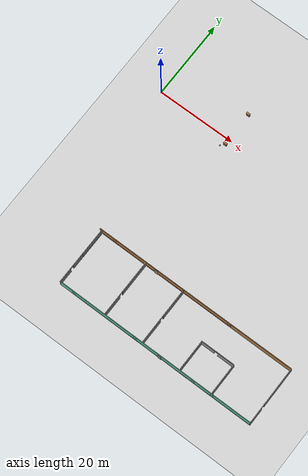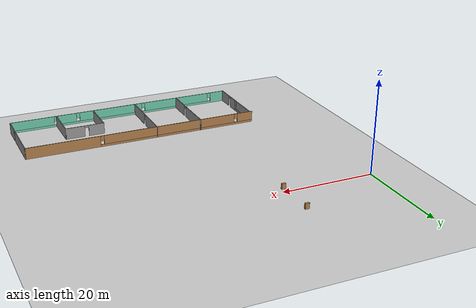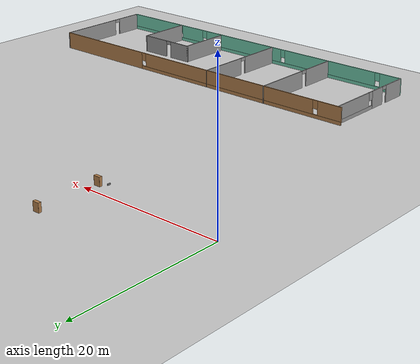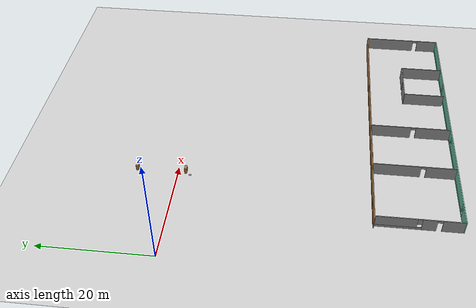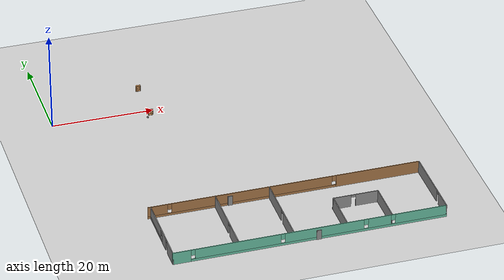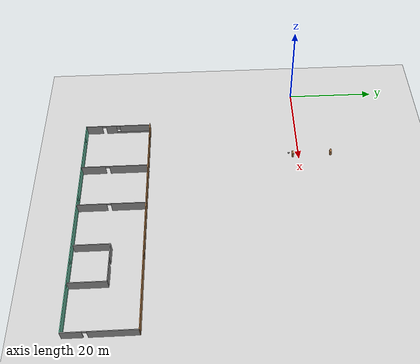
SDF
<sdf version="1.7">
 <world name="default">
  <model name="ground_plane">
   <static>1</static>
   <link name="link">
    <collision name="collision">
     <geometry><plane><normal>0 0 1</normal><size>100 100</size></plane></geometry>
     <surface>
      <contact><collide_bitmask>65535</collide_bitmask></contact>
      <friction><ode><mu>100</mu><mu2>50</mu2></ode></friction>
     </surface>
    </collision>
    <visual name="visual">
     <cast_shadows>0</cast_shadows>
     <geometry><plane><normal>0 0 1</normal><size>100 100</size></plane></geometry>
     <material>
      <script><uri>file://media/materials/scripts/gazebo.material</uri><name>Gazebo/Grey</name></script>
     </material>
    </visual>
   </link>
  </model>
  <model name="mynewbuilding">
   <pose>35.6759 -41.9538 0 0 -0 0</pose>
   <link name="Door_0">
    <collision name="Door_0_Collision">
     <geometry><box><size>0.9 0.17 2</size></box></geometry>
     <pose>0 0 1 0 -0 0</pose>
    </collision>
    <visual name="Door_0_Visual">
     <pose>0 0 1 0 -0 0</pose>
     <geometry><box><size>0.9 0.17 2</size></box></geometry>
     <material>
      <script><uri>file://media/materials/scripts/gazebo.material</uri><name>Gazebo/Grey</name></script>
     </material>
    </visual>
    <pose>-10.5562 7.30056 0 0 -0 0</pose>
   </link>
   <link name="Door_2">
    <collision name="Door_2_Collision">
     <geometry><box><size>0.9 0.17 2</size></box></geometry>
     <pose>0 0 1 0 -0 0</pose>
    </collision>
    <visual name="Door_2_Visual">
     <pose>0 0 1 0 -0 0</pose>
     <geometry><box><size>0.9 0.17 2</size></box></geometry>
     <material>
      <script><uri>file://media/materials/scripts/gazebo.material</uri><name>Gazebo/Grey</name></script>
     </material>
    </visual>
    <pose>1.7212 -7.54488 0 0 -0 0</pose>
   </link>
   <link name="Wall_0">
    <pose>0.25 -7.44583 0 0 -0 0</pose>
    <visual name="Wall_0_Visual_0">
     <pose>-24.2845 0 1.25 0 -0 0</pose>
     <geometry><box><size>3.43107 0.15 2.5</size></box></geometry>
     <material>
      <script><uri>file://media/materials/scripts/gazebo.material</uri><name>Gazebo/Grey</name></script>
      <ambient>0.435294 0.796078 0.67451 1</ambient>
     </material>
     <meta><layer>0</layer></meta>
    </visual>
    <collision name="Wall_0_Collision_0">
     <geometry><box><size>3.43107 0.15 2.5</size></box></geometry>
     <pose>-24.2845 0 1.25 0 -0 0</pose>
    </collision>
    <visual name="Wall_0_Visual_1">
     <pose>1.71554 0 0.25 0 -0 0</pose>
     <geometry><box><size>48.5689 0.15 0.5</size></box></geometry>
     <material>
      <script><uri>file://media/materials/scripts/gazebo.material</uri><name>Gazebo/Grey</name></script>
      <ambient>0.435294 0.796078 0.67451 1</ambient>
     </material>
     <meta><layer>0</layer></meta>
    </visual>
    <collision name="Wall_0_Collision_1">
     <geometry><box><size>48.5689 0.15 0.5</size></box></geometry>
     <pose>1.71554 0 0.25 0 -0 0</pose>
    </collision>
    <visual name="Wall_0_Visual_2">
     <pose>-13.7436 0 1.5 0 -0 0</pose>
     <geometry><box><size>16.0506 0.15 2</size></box></geometry>
     <material>
      <script><uri>file://media/materials/scripts/gazebo.material</uri><name>Gazebo/Grey</name></script>
      <ambient>0.435294 0.796078 0.67451 1</ambient>
     </material>
     <meta><layer>0</layer></meta>
    </visual>
    <collision name="Wall_0_Collision_2">
     <geometry><box><size>16.0506 0.15 2</size></box></geometry>
     <pose>-13.7436 0 1.5 0 -0 0</pose>
    </collision>
    <visual name="Wall_0_Visual_3">
     <pose>2.57933 0 1.5 0 -0 0</pose>
     <geometry><box><size>14.9953 0.15 2</size></box></geometry>
     <material>
      <script><uri>file://media/materials/scripts/gazebo.material</uri><name>Gazebo/Grey</name></script>
      <ambient>0.435294 0.796078 0.67451 1</ambient>
     </material>
     <meta><layer>0</layer></meta>
    </visual>
    <collision name="Wall_0_Collision_3">
     <geometry><box><size>14.9953 0.15 2</size></box></geometry>
     <pose>2.57933 0 1.5 0 -0 0</pose>
    </collision>
    <visual name="Wall_0_Visual_4">
     <pose>13.0626 0 1.5 0 -0 0</pose>
     <geometry><box><size>4.37128 0.15 2</size></box></geometry>
     <material>
      <script><uri>file://media/materials/scripts/gazebo.material</uri><name>Gazebo/Grey</name></script>
      <ambient>0.435294 0.796078 0.67451 1</ambient>
     </material>
     <meta><layer>0</layer></meta>
    </visual>
    <collision name="Wall_0_Collision_4">
     <geometry><box><size>4.37128 0.15 2</size></box></geometry>
     <pose>13.0626 0 1.5 0 -0 0</pose>
    </collision>
    <visual name="Wall_0_Visual_5">
     <pose>21.0241 0 1.5 0 -0 0</pose>
     <geometry><box><size>9.95176 0.15 2</size></box></geometry>
     <material>
      <script><uri>file://media/materials/scripts/gazebo.material</uri><name>Gazebo/Grey</name></script>
      <ambient>0.435294 0.796078 0.67451 1</ambient>
     </material>
     <meta><layer>0</layer></meta>
    </visual>
    <collision name="Wall_0_Collision_5">
     <geometry><box><size>9.95176 0.15 2</size></box></geometry>
     <pose>21.0241 0 1.5 0 -0 0</pose>
    </collision>
    <visual name="Wall_0_Visual_6">
     <pose>-22.1689 0 1.9 0 -0 0</pose>
     <geometry><box><size>0.8 0.15 1.2</size></box></geometry>
     <material>
      <script><uri>file://media/materials/scripts/gazebo.material</uri><name>Gazebo/Grey</name></script>
      <ambient>0.435294 0.796078 0.67451 1</ambient>
     </material>
     <meta><layer>0</layer></meta>
    </visual>
    <collision name="Wall_0_Collision_6">
     <geometry><box><size>0.8 0.15 1.2</size></box></geometry>
     <pose>-22.1689 0 1.9 0 -0 0</pose>
    </collision>
    <visual name="Wall_0_Visual_7">
     <pose>-5.3183 0 1.9 0 -0 0</pose>
     <geometry><box><size>0.8 0.15 1.2</size></box></geometry>
     <material>
      <script><uri>file://media/materials/scripts/gazebo.material</uri><name>Gazebo/Grey</name></script>
      <ambient>0.435294 0.796078 0.67451 1</ambient>
     </material>
     <meta><layer>0</layer></meta>
    </visual>
    <collision name="Wall_0_Collision_7">
     <geometry><box><size>0.8 0.15 1.2</size></box></geometry>
     <pose>-5.3183 0 1.9 0 -0 0</pose>
    </collision>
    <visual name="Wall_0_Visual_8">
     <pose>10.477 0 1.9 0 -0 0</pose>
     <geometry><box><size>0.8 0.15 1.2</size></box></geometry>
     <material>
      <script><uri>file://media/materials/scripts/gazebo.material</uri><name>Gazebo/Grey</name></script>
      <ambient>0.435294 0.796078 0.67451 1</ambient>
     </material>
     <meta><layer>0</layer></meta>
    </visual>
    <collision name="Wall_0_Collision_8">
     <geometry><box><size>0.8 0.15 1.2</size></box></geometry>
     <pose>10.477 0 1.9 0 -0 0</pose>
    </collision>
    <visual name="Wall_0_Visual_9">
     <pose>15.6482 0 1.9 0 -0 0</pose>
     <geometry><box><size>0.8 0.15 1.2</size></box></geometry>
     <material>
      <script><uri>file://media/materials/scripts/gazebo.material</uri><name>Gazebo/Grey</name></script>
      <ambient>0.435294 0.796078 0.67451 1</ambient>
     </material>
     <meta><layer>0</layer></meta>
    </visual>
    <collision name="Wall_0_Collision_9">
     <geometry><box><size>0.8 0.15 1.2</size></box></geometry>
     <pose>15.6482 0 1.9 0 -0 0</pose>
    </collision>
   </link>
   <link name="Wall_11">
    <pose>-25.675 -0.145833 0 0 -0 1.5708</pose>
    <visual name="Wall_11_Visual_0">
     <pose>-5.5013 0 1.25 0 -0 0</pose>
     <geometry><box><size>3.7474 0.15 2.5</size></box></geometry>
     <material>
      <script><uri>file://media/materials/scripts/gazebo.material</uri><name>Gazebo/Grey</name></script>
      <ambient>1 1 1 1</ambient>
     </material>
     <meta><layer>0</layer></meta>
    </visual>
    <collision name="Wall_11_Collision_0">
     <geometry><box><size>3.7474 0.15 2.5</size></box></geometry>
     <pose>-5.5013 0 1.25 0 -0 0</pose>
    </collision>
    <visual name="Wall_11_Visual_1">
     <pose>-1.51679 0 1.25 0 -0 0</pose>
     <geometry><box><size>2.42163 0.15 2.5</size></box></geometry>
     <material>
      <script><uri>file://media/materials/scripts/gazebo.material</uri><name>Gazebo/Grey</name></script>
      <ambient>1 1 1 1</ambient>
     </material>
     <meta><layer>0</layer></meta>
    </visual>
    <collision name="Wall_11_Collision_1">
     <geometry><box><size>2.42163 0.15 2.5</size></box></geometry>
     <pose>-1.51679 0 1.25 0 -0 0</pose>
    </collision>
    <visual name="Wall_11_Visual_2">
     <pose>3.53451 0 0.25 0 -0 0</pose>
     <geometry><box><size>7.68097 0.15 0.5</size></box></geometry>
     <material>
      <script><uri>file://media/materials/scripts/gazebo.material</uri><name>Gazebo/Grey</name></script>
      <ambient>1 1 1 1</ambient>
     </material>
     <meta><layer>0</layer></meta>
    </visual>
    <collision name="Wall_11_Collision_2">
     <geometry><box><size>7.68097 0.15 0.5</size></box></geometry>
     <pose>3.53451 0 0.25 0 -0 0</pose>
    </collision>
    <visual name="Wall_11_Visual_3">
     <pose>3.93451 0 1.5 0 -0 0</pose>
     <geometry><box><size>6.88097 0.15 2</size></box></geometry>
     <material>
      <script><uri>file://media/materials/scripts/gazebo.material</uri><name>Gazebo/Grey</name></script>
      <ambient>1 1 1 1</ambient>
     </material>
     <meta><layer>0</layer></meta>
    </visual>
    <collision name="Wall_11_Collision_3">
     <geometry><box><size>6.88097 0.15 2</size></box></geometry>
     <pose>3.93451 0 1.5 0 -0 0</pose>
    </collision>
    <visual name="Wall_11_Visual_4">
     <pose>0.094027 0 1.9 0 -0 0</pose>
     <geometry><box><size>0.8 0.15 1.2</size></box></geometry>
     <material>
      <script><uri>file://media/materials/scripts/gazebo.material</uri><name>Gazebo/Grey</name></script>
      <ambient>1 1 1 1</ambient>
     </material>
     <meta><layer>0</layer></meta>
    </visual>
    <collision name="Wall_11_Collision_4">
     <geometry><box><size>0.8 0.15 1.2</size></box></geometry>
     <pose>0.094027 0 1.9 0 -0 0</pose>
    </collision>
    <visual name="Wall_11_Visual_5">
     <pose>-3.1776 0 2.25 0 -0 0</pose>
     <geometry><box><size>0.9 0.15 0.5</size></box></geometry>
     <material>
      <script><uri>file://media/materials/scripts/gazebo.material</uri><name>Gazebo/Grey</name></script>
      <ambient>1 1 1 1</ambient>
     </material>
     <meta><layer>0</layer></meta>
    </visual>
    <collision name="Wall_11_Collision_5">
     <geometry><box><size>0.9 0.15 0.5</size></box></geometry>
     <pose>-3.1776 0 2.25 0 -0 0</pose>
    </collision>
   </link>
   <link name="Wall_14">
    <pose>-13.4057 0.020833 0 0 -0 1.5708</pose>
    <visual name="Wall_14_Visual_0">
     <pose>-4.78525 0 1.25 0 -0 0</pose>
     <geometry><box><size>5.4295 0.15 2.5</size></box></geometry>
     <material>
      <script><uri>file://media/materials/scripts/gazebo.material</uri><name>Gazebo/Grey</name></script>
      <ambient>1 1 1 1</ambient>
     </material>
     <meta><layer>0</layer></meta>
    </visual>
    <collision name="Wall_14_Collision_0">
     <geometry><box><size>5.4295 0.15 2.5</size></box></geometry>
     <pose>-4.78525 0 1.25 0 -0 0</pose>
    </collision>
    <visual name="Wall_14_Visual_1">
     <pose>3.16475 0 1.25 0 -0 0</pose>
     <geometry><box><size>8.6705 0.15 2.5</size></box></geometry>
     <material>
      <script><uri>file://media/materials/scripts/gazebo.material</uri><name>Gazebo/Grey</name></script>
      <ambient>1 1 1 1</ambient>
     </material>
     <meta><layer>0</layer></meta>
    </visual>
    <collision name="Wall_14_Collision_1">
     <geometry><box><size>8.6705 0.15 2.5</size></box></geometry>
     <pose>3.16475 0 1.25 0 -0 0</pose>
    </collision>
    <visual name="Wall_14_Visual_2">
     <pose>-1.6205 0 2.25 0 -0 0</pose>
     <geometry><box><size>0.9 0.15 0.5</size></box></geometry>
     <material>
      <script><uri>file://media/materials/scripts/gazebo.material</uri><name>Gazebo/Grey</name></script>
      <ambient>1 1 1 1</ambient>
     </material>
     <meta><layer>0</layer></meta>
    </visual>
    <collision name="Wall_14_Collision_2">
     <geometry><box><size>0.9 0.15 0.5</size></box></geometry>
     <pose>-1.6205 0 2.25 0 -0 0</pose>
    </collision>
   </link>
   <link name="Wall_16">
    <pose>-3.02793 -0.014346 0 0 -0 1.5708</pose>
    <visual name="Wall_16_Visual_0">
     <pose>-4.22239 0 1.25 0 -0 0</pose>
     <geometry><box><size>6.55522 0.15 2.5</size></box></geometry>
     <material>
      <script><uri>file://media/materials/scripts/gazebo.material</uri><name>Gazebo/Grey</name></script>
      <ambient>1 1 1 1</ambient>
     </material>
     <meta><layer>0</layer></meta>
    </visual>
    <collision name="Wall_16_Collision_0">
     <geometry><box><size>6.55522 0.15 2.5</size></box></geometry>
     <pose>-4.22239 0 1.25 0 -0 0</pose>
    </collision>
    <visual name="Wall_16_Visual_1">
     <pose>3.72761 0 1.25 0 -0 0</pose>
     <geometry><box><size>7.54478 0.15 2.5</size></box></geometry>
     <material>
      <script><uri>file://media/materials/scripts/gazebo.material</uri><name>Gazebo/Grey</name></script>
      <ambient>1 1 1 1</ambient>
     </material>
     <meta><layer>0</layer></meta>
    </visual>
    <collision name="Wall_16_Collision_1">
     <geometry><box><size>7.54478 0.15 2.5</size></box></geometry>
     <pose>3.72761 0 1.25 0 -0 0</pose>
    </collision>
    <visual name="Wall_16_Visual_2">
     <pose>-0.494784 0 2.25 0 -0 0</pose>
     <geometry><box><size>0.9 0.15 0.5</size></box></geometry>
     <material>
      <script><uri>file://media/materials/scripts/gazebo.material</uri><name>Gazebo/Grey</name></script>
      <ambient>1 1 1 1</ambient>
     </material>
     <meta><layer>0</layer></meta>
    </visual>
    <collision name="Wall_16_Collision_2">
     <geometry><box><size>0.9 0.15 0.5</size></box></geometry>
     <pose>-0.494784 0 2.25 0 -0 0</pose>
    </collision>
   </link>
   <link name="Wall_18">
    <collision name="Wall_18_Collision">
     <geometry><box><size>7.75 0.15 2.5</size></box></geometry>
     <pose>0 0 1.25 0 -0 0</pose>
    </collision>
    <visual name="Wall_18_Visual">
     <pose>0 0 1.25 0 -0 0</pose>
     <geometry><box><size>7.75 0.15 2.5</size></box></geometry>
     <material>
      <script><uri>file://media/materials/scripts/gazebo.material</uri><name>Gazebo/Grey</name></script>
      <ambient>1 1 1 1</ambient>
     </material>
     <meta><layer>0</layer></meta>
    </visual>
    <pose>7.10355 -3.2172 0 0 -0 1.5708</pose>
   </link>
   <link name="Wall_19">
    <pose>11.4035 0.5828 0 0 -0 0</pose>
    <visual name="Wall_19_Visual_0">
     <pose>-2.64702 0 1.25 0 -0 0</pose>
     <geometry><box><size>3.52632 0.15 2.5</size></box></geometry>
     <material>
      <script><uri>file://media/materials/scripts/gazebo.material</uri><name>Gazebo/Grey</name></script>
      <ambient>1 1 1 1</ambient>
     </material>
     <meta><layer>0</layer></meta>
    </visual>
    <collision name="Wall_19_Collision_0">
     <geometry><box><size>3.52632 0.15 2.5</size></box></geometry>
     <pose>-2.64702 0 1.25 0 -0 0</pose>
    </collision>
    <visual name="Wall_19_Visual_1">
     <pose>2.21316 0 1.25 0 -0 0</pose>
     <geometry><box><size>4.39404 0.15 2.5</size></box></geometry>
     <material>
      <script><uri>file://media/materials/scripts/gazebo.material</uri><name>Gazebo/Grey</name></script>
      <ambient>1 1 1 1</ambient>
     </material>
     <meta><layer>0</layer></meta>
    </visual>
    <collision name="Wall_19_Collision_1">
     <geometry><box><size>4.39404 0.15 2.5</size></box></geometry>
     <pose>2.21316 0 1.25 0 -0 0</pose>
    </collision>
    <visual name="Wall_19_Visual_2">
     <pose>-0.433857 0 2.25 0 -0 0</pose>
     <geometry><box><size>0.9 0.15 0.5</size></box></geometry>
     <material>
      <script><uri>file://media/materials/scripts/gazebo.material</uri><name>Gazebo/Grey</name></script>
      <ambient>1 1 1 1</ambient>
     </material>
     <meta><layer>0</layer></meta>
    </visual>
    <collision name="Wall_19_Collision_2">
     <geometry><box><size>0.9 0.15 0.5</size></box></geometry>
     <pose>-0.433857 0 2.25 0 -0 0</pose>
    </collision>
   </link>
   <link name="Wall_20">
    <collision name="Wall_20_Collision">
     <geometry><box><size>8 0.15 2.5</size></box></geometry>
     <pose>0 0 1.25 0 -0 0</pose>
    </collision>
    <visual name="Wall_20_Visual">
     <pose>0 0 1.25 0 -0 0</pose>
     <geometry><box><size>8 0.15 2.5</size></box></geometry>
     <material>
      <script><uri>file://media/materials/scripts/gazebo.material</uri><name>Gazebo/Grey</name></script>
      <ambient>1 1 1 1</ambient>
     </material>
     <meta><layer>0</layer></meta>
    </visual>
    <pose>15.7387 -3.3422 0 0 -0 -1.5708</pose>
   </link>
   <link name="Wall_8">
    <pose>26.175 -0.020833 0 0 -0 1.5708</pose>
    <visual name="Wall_8_Visual_0">
     <pose>-5.41523 0 1.25 0 -0 0</pose>
     <geometry><box><size>4.16955 0.15 2.5</size></box></geometry>
     <material>
      <script><uri>file://media/materials/scripts/gazebo.material</uri><name>Gazebo/Grey</name></script>
      <ambient>1 1 1 1</ambient>
     </material>
     <meta><layer>0</layer></meta>
    </visual>
    <collision name="Wall_8_Collision_0">
     <geometry><box><size>4.16955 0.15 2.5</size></box></geometry>
     <pose>-5.41523 0 1.25 0 -0 0</pose>
    </collision>
    <visual name="Wall_8_Visual_1">
     <pose>2.53477 0 1.25 0 -0 0</pose>
     <geometry><box><size>9.93045 0.15 2.5</size></box></geometry>
     <material>
      <script><uri>file://media/materials/scripts/gazebo.material</uri><name>Gazebo/Grey</name></script>
      <ambient>1 1 1 1</ambient>
     </material>
     <meta><layer>0</layer></meta>
    </visual>
    <collision name="Wall_8_Collision_1">
     <geometry><box><size>9.93045 0.15 2.5</size></box></geometry>
     <pose>2.53477 0 1.25 0 -0 0</pose>
    </collision>
    <visual name="Wall_8_Visual_2">
     <pose>-2.88045 0 2.25 0 -0 0</pose>
     <geometry><box><size>0.9 0.15 0.5</size></box></geometry>
     <material>
      <script><uri>file://media/materials/scripts/gazebo.material</uri><name>Gazebo/Grey</name></script>
      <ambient>1 1 1 1</ambient>
     </material>
     <meta><layer>0</layer></meta>
    </visual>
    <collision name="Wall_8_Collision_2">
     <geometry><box><size>0.9 0.15 0.5</size></box></geometry>
     <pose>-2.88045 0 2.25 0 -0 0</pose>
    </collision>
   </link>
   <link name="Wall_9">
    <pose>-0 7.40417 0 0 -0 3.14159</pose>
    <visual name="Wall_9_Visual_0">
     <pose>-18.0729 0 1.25 0 -0 0</pose>
     <geometry><box><size>16.3543 0.15 2.5</size></box></geometry>
     <material>
      <script><uri>file://media/materials/scripts/gazebo.material</uri><name>Gazebo/Wood</name></script>
      <ambient>1 1 1 1</ambient>
     </material>
     <meta><layer>0</layer></meta>
    </visual>
    <collision name="Wall_9_Collision_0">
     <geometry><box><size>16.3543 0.15 2.5</size></box></geometry>
     <pose>-18.0729 0 1.25 0 -0 0</pose>
    </collision>
    <visual name="Wall_9_Visual_1">
     <pose>8.17715 0 0.25 0 -0 0</pose>
     <geometry><box><size>36.1457 0.15 0.5</size></box></geometry>
     <material>
      <script><uri>file://media/materials/scripts/gazebo.material</uri><name>Gazebo/Wood</name></script>
      <ambient>1 1 1 1</ambient>
     </material>
     <meta><layer>0</layer></meta>
    </visual>
    <collision name="Wall_9_Collision_1">
     <geometry><box><size>36.1457 0.15 0.5</size></box></geometry>
     <pose>8.17715 0 0.25 0 -0 0</pose>
    </collision>
    <visual name="Wall_9_Visual_2">
     <pose>6.29956 0 1.5 0 -0 0</pose>
     <geometry><box><size>30.7905 0.15 2</size></box></geometry>
     <material>
      <script><uri>file://media/materials/scripts/gazebo.material</uri><name>Gazebo/Wood</name></script>
      <ambient>1 1 1 1</ambient>
     </material>
     <meta><layer>0</layer></meta>
    </visual>
    <collision name="Wall_9_Collision_2">
     <geometry><box><size>30.7905 0.15 2</size></box></geometry>
     <pose>6.29956 0 1.5 0 -0 0</pose>
    </collision>
    <visual name="Wall_9_Visual_3">
     <pose>24.3724 0 1.5 0 -0 0</pose>
     <geometry><box><size>3.75518 0.15 2</size></box></geometry>
     <material>
      <script><uri>file://media/materials/scripts/gazebo.material</uri><name>Gazebo/Wood</name></script>
      <ambient>1 1 1 1</ambient>
     </material>
     <meta><layer>0</layer></meta>
    </visual>
    <collision name="Wall_9_Collision_3">
     <geometry><box><size>3.75518 0.15 2</size></box></geometry>
     <pose>24.3724 0 1.5 0 -0 0</pose>
    </collision>
    <visual name="Wall_9_Visual_4">
     <pose>-9.4957 0 1.9 0 -0 0</pose>
     <geometry><box><size>0.8 0.15 1.2</size></box></geometry>
     <material>
      <script><uri>file://media/materials/scripts/gazebo.material</uri><name>Gazebo/Wood</name></script>
      <ambient>1 1 1 1</ambient>
     </material>
     <meta><layer>0</layer></meta>
    </visual>
    <collision name="Wall_9_Collision_4">
     <geometry><box><size>0.8 0.15 1.2</size></box></geometry>
     <pose>-9.4957 0 1.9 0 -0 0</pose>
    </collision>
    <visual name="Wall_9_Visual_5">
     <pose>22.0948 0 1.9 0 -0 0</pose>
     <geometry><box><size>0.8 0.15 1.2</size></box></geometry>
     <material>
      <script><uri>file://media/materials/scripts/gazebo.material</uri><name>Gazebo/Wood</name></script>
      <ambient>1 1 1 1</ambient>
     </material>
     <meta><layer>0</layer></meta>
    </visual>
    <collision name="Wall_9_Collision_5">
     <geometry><box><size>0.8 0.15 1.2</size></box></geometry>
     <pose>22.0948 0 1.9 0 -0 0</pose>
    </collision>
   </link>
   <static>1</static>
  </model>
  <model name="myrooomba2">
   <link name="link_1">
    <inertial>
     <mass>1</mass>
     <inertia><ixx>0.145833</ixx><ixy>0</ixy><ixz>0</ixz><iyy>0.145833</iyy><iyz>0</iyz><izz>0.125</izz></inertia>
     <pose>0 0 0.2 0 -0 0</pose>
    </inertial>
    <pose>0.330896 -0.819505 0.5 0 -0 0</pose>
    <visual name="visual">
     <geometry><cylinder><radius>0.2</radius><length>0.05</length></cylinder></geometry>
     <material>
      <lighting>1</lighting>
      <script><uri>file://media/materials/scripts/gazebo.material</uri><name>Gazebo/Grey</name></script>
      <shader type="pixel"><normal_map>__default__</normal_map></shader>
      <ambient>0.3 0.3 0.3 1</ambient>
      <diffuse>0.7 0.7 0.7 1</diffuse>
      <specular>0.01 0.01 0.01 1</specular>
      <emissive>0 0 0 1</emissive>
     </material>
    </visual>
    <collision name="collision">
     <geometry><cylinder><radius>0.2</radius><length>0.05</length></cylinder></geometry>
     <surface>
      <friction>
       <ode><mu>1</mu><mu2>1</mu2><fdir1>0 0 0</fdir1><slip1>0</slip1><slip2>0</slip2></ode>
       <torsional>
        <coefficient>1</coefficient>
        <patch_radius>0</patch_radius>
        <surface_radius>0</surface_radius>
        <use_patch_radius>1</use_patch_radius>
        <ode><slip>0</slip></ode>
       </torsional>
      </friction>
      <bounce><restitution_coefficient>0</restitution_coefficient><threshold>1e+06</threshold></bounce>
      <contact>
       <collide_without_contact>0</collide_without_contact>
       <collide_without_contact_bitmask>1</collide_without_contact_bitmask>
       <collide_bitmask>1</collide_bitmask>
       <ode>
        <soft_cfm>0</soft_cfm>
        <soft_erp>0.2</soft_erp>
        <kp>1e+13</kp>
        <kd>1</kd>
        <max_vel>0.01</max_vel>
        <min_depth>0</min_depth>
       </ode>
       <bullet>
        <split_impulse>1</split_impulse>
        <split_impulse_penetration_threshold>-0.01</split_impulse_penetration_threshold>
        <soft_cfm>0</soft_cfm>
        <soft_erp>0.2</soft_erp>
        <kp>1e+13</kp>
        <kd>1</kd>
       </bullet>
      </contact>
     </surface>
    </collision>
   </link>
   <link name="link_2_clone">
    <inertial>
     <mass>1</mass>
     <inertia><ixx>0.145833</ixx><ixy>0</ixy><ixz>0</ixz><iyy>0.145833</iyy><iyz>0</iyz><izz>0.125</izz></inertia>
    </inertial>
    <pose>0.330896 -0.994495 0.5 1.5707 -0 0</pose>
    <visual name="visual">
     <geometry><cylinder><radius>0.1</radius><length>0.05</length></cylinder></geometry>
     <material>
      <lighting>1</lighting>
      <script><uri>file://media/materials/scripts/gazebo.material</uri><name>Gazebo/Grey</name></script>
      <shader type="pixel"><normal_map>__default__</normal_map></shader>
      <ambient>0.3 0.3 0.3 1</ambient>
      <diffuse>0.7 0.7 0.7 1</diffuse>
      <specular>0.01 0.01 0.01 1</specular>
      <emissive>0 0 0 1</emissive>
     </material>
    </visual>
    <collision name="collision">
     <geometry><cylinder><radius>0.1</radius><length>0.05</length></cylinder></geometry>
     <surface>
      <friction>
       <ode><mu>1</mu><mu2>1</mu2><fdir1>0 0 0</fdir1><slip1>0</slip1><slip2>0</slip2></ode>
       <torsional>
        <coefficient>1</coefficient>
        <patch_radius>0</patch_radius>
        <surface_radius>0</surface_radius>
        <use_patch_radius>1</use_patch_radius>
        <ode><slip>0</slip></ode>
       </torsional>
      </friction>
      <bounce><restitution_coefficient>0</restitution_coefficient><threshold>1e+06</threshold></bounce>
      <contact>
       <collide_without_contact>0</collide_without_contact>
       <collide_without_contact_bitmask>1</collide_without_contact_bitmask>
       <collide_bitmask>1</collide_bitmask>
       <ode>
        <soft_cfm>0</soft_cfm>
        <soft_erp>0.2</soft_erp>
        <kp>1e+13</kp>
        <kd>1</kd>
        <max_vel>0.01</max_vel>
        <min_depth>0</min_depth>
       </ode>
       <bullet>
        <split_impulse>1</split_impulse>
        <split_impulse_penetration_threshold>-0.01</split_impulse_penetration_threshold>
        <soft_cfm>0</soft_cfm>
        <soft_erp>0.2</soft_erp>
        <kp>1e+13</kp>
        <kd>1</kd>
       </bullet>
      </contact>
     </surface>
    </collision>
   </link>
   <link name="link_2_clone_clone">
    <inertial>
     <mass>1</mass>
     <inertia><ixx>0.145833</ixx><ixy>0</ixy><ixz>0</ixz><iyy>0.145833</iyy><iyz>0</iyz><izz>0.125</izz></inertia>
    </inertial>
    <pose>0.330896 -0.644515 0.5 1.5707 -0 0</pose>
    <visual name="visual">
     <geometry><cylinder><radius>0.1</radius><length>0.05</length></cylinder></geometry>
     <material>
      <lighting>1</lighting>
      <script><uri>file://media/materials/scripts/gazebo.material</uri><name>Gazebo/Grey</name></script>
      <shader type="pixel"><normal_map>__default__</normal_map></shader>
      <ambient>0.3 0.3 0.3 1</ambient>
      <diffuse>0.7 0.7 0.7 1</diffuse>
      <specular>0.01 0.01 0.01 1</specular>
      <emissive>0 0 0 1</emissive>
     </material>
    </visual>
    <collision name="collision">
     <geometry><cylinder><radius>0.1</radius><length>0.05</length></cylinder></geometry>
     <surface>
      <friction>
       <ode><mu>1</mu><mu2>1</mu2><fdir1>0 0 0</fdir1><slip1>0</slip1><slip2>0</slip2></ode>
       <torsional>
        <coefficient>1</coefficient>
        <patch_radius>0</patch_radius>
        <surface_radius>0</surface_radius>
        <use_patch_radius>1</use_patch_radius>
        <ode><slip>0</slip></ode>
       </torsional>
      </friction>
      <bounce><restitution_coefficient>0</restitution_coefficient><threshold>1e+06</threshold></bounce>
      <contact>
       <collide_without_contact>0</collide_without_contact>
       <collide_without_contact_bitmask>1</collide_without_contact_bitmask>
       <collide_bitmask>1</collide_bitmask>
       <ode>
        <soft_cfm>0</soft_cfm>
        <soft_erp>0.2</soft_erp>
        <kp>1e+13</kp>
        <kd>1</kd>
        <max_vel>0.01</max_vel>
        <min_depth>0</min_depth>
       </ode>
       <bullet>
        <split_impulse>1</split_impulse>
        <split_impulse_penetration_threshold>-0.01</split_impulse_penetration_threshold>
        <soft_cfm>0</soft_cfm>
        <soft_erp>0.2</soft_erp>
        <kp>1e+13</kp>
        <kd>1</kd>
       </bullet>
      </contact>
     </surface>
    </collision>
   </link>
   <joint name="link_1_JOINT_2" type="revolute">
    <parent>link_1</parent>
    <child>link_2_clone</child>
    <axis>
     <xyz>0 0 1</xyz>
     <limit>
      <lower>-1.79769e+308</lower>
      <upper>1.79769e+308</upper>
      <effort>-1</effort>
      <velocity>-1</velocity>
     </limit>
     <dynamics>
      <spring_reference>0</spring_reference>
      <spring_stiffness>0</spring_stiffness>
      <damping>0</damping>
     </dynamics>
    </axis>
    <physics>
     <ode><limit><cfm>0</cfm><erp>0.2</erp></limit><suspension><cfm>0</cfm><erp>0.2</erp></suspension></ode>
    </physics>
   </joint>
   <joint name="link_1_JOINT_3" type="revolute">
    <parent>link_1</parent>
    <child>link_2_clone_clone</child>
    <axis>
     <xyz>0 0 1</xyz>
     <limit>
      <lower>-1.79769e+308</lower>
      <upper>1.79769e+308</upper>
      <effort>-1</effort>
      <velocity>-1</velocity>
     </limit>
     <dynamics>
      <spring_reference>0</spring_reference>
      <spring_stiffness>0</spring_stiffness>
      <damping>0</damping>
     </dynamics>
    </axis>
    <physics>
     <ode><limit><cfm>0</cfm><erp>0.2</erp></limit><suspension><cfm>0</cfm><erp>0.2</erp></suspension></ode>
    </physics>
   </joint>
   <static>0</static>
   <pose>17.9799 -1.42294 -0.399998 0 -0 0</pose>
  </model>
  <model name="bookshelf_4">
   <static>1</static>
   <link name="link">
    <inertial><mass>1</mass></inertial>
    <collision name="back">
     <pose>0 0.005 0.6 0 -0 0</pose>
     <geometry><box><size>0.9 0.01 1.2</size></box></geometry>
    </collision>
    <visual name="visual1">
     <pose>0 0.005 0.6 0 -0 0</pose>
     <geometry><box><size>0.9 0.01 1.2</size></box></geometry>
     <material>
      <script><uri>file://media/materials/scripts/gazebo.material</uri><name>Gazebo/Wood</name></script>
     </material>
    </visual>
    <collision name="left_side">
     <pose>0.45 -0.195 0.6 0 -0 0</pose>
     <geometry><box><size>0.02 0.4 1.2</size></box></geometry>
    </collision>
    <visual name="visual2">
     <pose>0.45 -0.195 0.6 0 -0 0</pose>
     <geometry><box><size>0.02 0.4 1.2</size></box></geometry>
     <material>
      <script><uri>file://media/materials/scripts/gazebo.material</uri><name>Gazebo/Wood</name></script>
     </material>
    </visual>
    <collision name="right_side">
     <pose>-0.45 -0.195 0.6 0 -0 0</pose>
     <geometry><box><size>0.02 0.4 1.2</size></box></geometry>
    </collision>
    <visual name="visual3">
     <pose>-0.45 -0.195 0.6 0 -0 0</pose>
     <geometry><box><size>0.02 0.4 1.2</size></box></geometry>
     <material>
      <script><uri>file://media/materials/scripts/gazebo.material</uri><name>Gazebo/Wood</name></script>
     </material>
    </visual>
    <collision name="bottom">
     <pose>0 -0.195 0.03 0 -0 0</pose>
     <geometry><box><size>0.88 0.4 0.06</size></box></geometry>
    </collision>
    <visual name="visual4">
     <pose>0 -0.195 0.03 0 -0 0</pose>
     <geometry><box><size>0.88 0.4 0.06</size></box></geometry>
     <material>
      <script><uri>file://media/materials/scripts/gazebo.material</uri><name>Gazebo/Wood</name></script>
     </material>
    </visual>
    <collision name="top">
     <pose>0 -0.195 1.19 0 -0 0</pose>
     <geometry><box><size>0.88 0.4 0.02</size></box></geometry>
    </collision>
    <visual name="visual5">
     <pose>0 -0.195 1.19 0 -0 0</pose>
     <geometry><box><size>0.88 0.4 0.02</size></box></geometry>
     <material>
      <script><uri>file://media/materials/scripts/gazebo.material</uri><name>Gazebo/Wood</name></script>
     </material>
    </visual>
    <collision name="low_shelf">
     <pose>0 -0.195 0.43 0 -0 0</pose>
     <geometry><box><size>0.88 0.4 0.02</size></box></geometry>
    </collision>
    <visual name="visual6">
     <pose>0 -0.195 0.43 0 -0 0</pose>
     <geometry><box><size>0.88 0.4 0.02</size></box></geometry>
     <material>
      <script><uri>file://media/materials/scripts/gazebo.material</uri><name>Gazebo/Wood</name></script>
     </material>
    </visual>
    <collision name="high_shelf">
     <pose>0 -0.195 0.8 0 -0 0</pose>
     <geometry><box><size>0.88 0.4 0.02</size></box></geometry>
    </collision>
    <visual name="visual7">
     <pose>0 -0.195 0.8 0 -0 0</pose>
     <geometry><box><size>0.88 0.4 0.02</size></box></geometry>
     <material>
      <script><uri>file://media/materials/scripts/gazebo.material</uri><name>Gazebo/Wood</name></script>
     </material>
    </visual>
   </link>
   <pose>19.011 7.6187 0 0 -0 0</pose>
  </model>
  <model name="bookshelf_5">
   <static>1</static>
   <link name="link">
    <inertial><mass>1</mass></inertial>
    <collision name="back">
     <pose>0 0.005 0.6 0 -0 0</pose>
     <geometry><box><size>0.9 0.01 1.2</size></box></geometry>
    </collision>
    <visual name="visual1">
     <pose>0 0.005 0.6 0 -0 0</pose>
     <geometry><box><size>0.9 0.01 1.2</size></box></geometry>
     <material>
      <script><uri>file://media/materials/scripts/gazebo.material</uri><name>Gazebo/Wood</name></script>
     </material>
    </visual>
    <collision name="left_side">
     <pose>0.45 -0.195 0.6 0 -0 0</pose>
     <geometry><box><size>0.02 0.4 1.2</size></box></geometry>
    </collision>
    <visual name="visual2">
     <pose>0.45 -0.195 0.6 0 -0 0</pose>
     <geometry><box><size>0.02 0.4 1.2</size></box></geometry>
     <material>
      <script><uri>file://media/materials/scripts/gazebo.material</uri><name>Gazebo/Wood</name></script>
     </material>
    </visual>
    <collision name="right_side">
     <pose>-0.45 -0.195 0.6 0 -0 0</pose>
     <geometry><box><size>0.02 0.4 1.2</size></box></geometry>
    </collision>
    <visual name="visual3">
     <pose>-0.45 -0.195 0.6 0 -0 0</pose>
     <geometry><box><size>0.02 0.4 1.2</size></box></geometry>
     <material>
      <script><uri>file://media/materials/scripts/gazebo.material</uri><name>Gazebo/Wood</name></script>
     </material>
    </visual>
    <collision name="bottom">
     <pose>0 -0.195 0.03 0 -0 0</pose>
     <geometry><box><size>0.88 0.4 0.06</size></box></geometry>
    </collision>
    <visual name="visual4">
     <pose>0 -0.195 0.03 0 -0 0</pose>
     <geometry><box><size>0.88 0.4 0.06</size></box></geometry>
     <material>
      <script><uri>file://media/materials/scripts/gazebo.material</uri><name>Gazebo/Wood</name></script>
     </material>
    </visual>
    <collision name="top">
     <pose>0 -0.195 1.19 0 -0 0</pose>
     <geometry><box><size>0.88 0.4 0.02</size></box></geometry>
    </collision>
    <visual name="visual5">
     <pose>0 -0.195 1.19 0 -0 0</pose>
     <geometry><box><size>0.88 0.4 0.02</size></box></geometry>
     <material>
      <script><uri>file://media/materials/scripts/gazebo.material</uri><name>Gazebo/Wood</name></script>
     </material>
    </visual>
    <collision name="low_shelf">
     <pose>0 -0.195 0.43 0 -0 0</pose>
     <geometry><box><size>0.88 0.4 0.02</size></box></geometry>
    </collision>
    <visual name="visual6">
     <pose>0 -0.195 0.43 0 -0 0</pose>
     <geometry><box><size>0.88 0.4 0.02</size></box></geometry>
     <material>
      <script><uri>file://media/materials/scripts/gazebo.material</uri><name>Gazebo/Wood</name></script>
     </material>
    </visual>
    <collision name="high_shelf">
     <pose>0 -0.195 0.8 0 -0 0</pose>
     <geometry><box><size>0.88 0.4 0.02</size></box></geometry>
    </collision>
    <visual name="visual7">
     <pose>0 -0.195 0.8 0 -0 0</pose>
     <geometry><box><size>0.88 0.4 0.02</size></box></geometry>
     <material>
      <script><uri>file://media/materials/scripts/gazebo.material</uri><name>Gazebo/Wood</name></script>
     </material>
    </visual>
   </link>
   <pose>19.1309 -1.17486 0 0 -0 0</pose>
  </model>
 </world>
</sdf>
